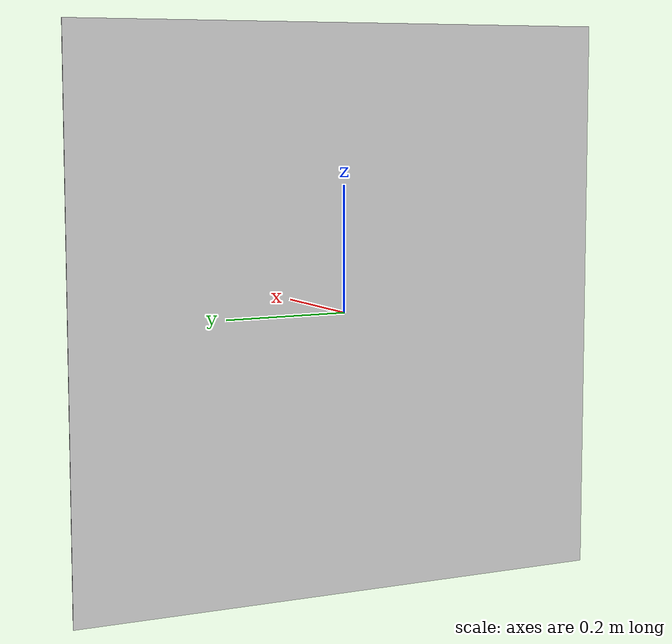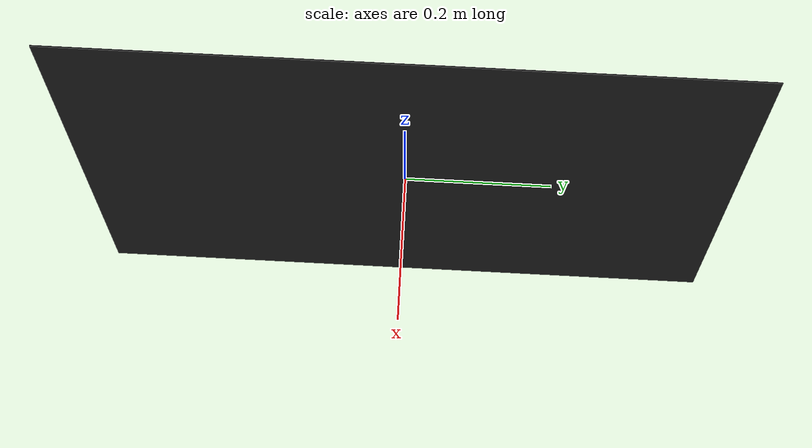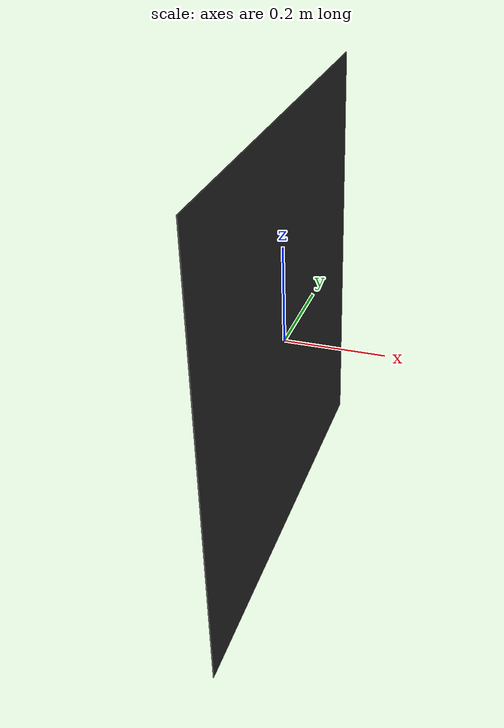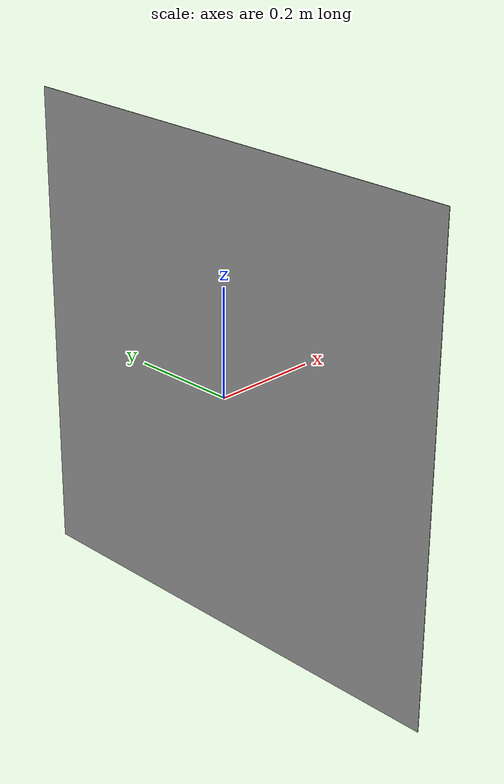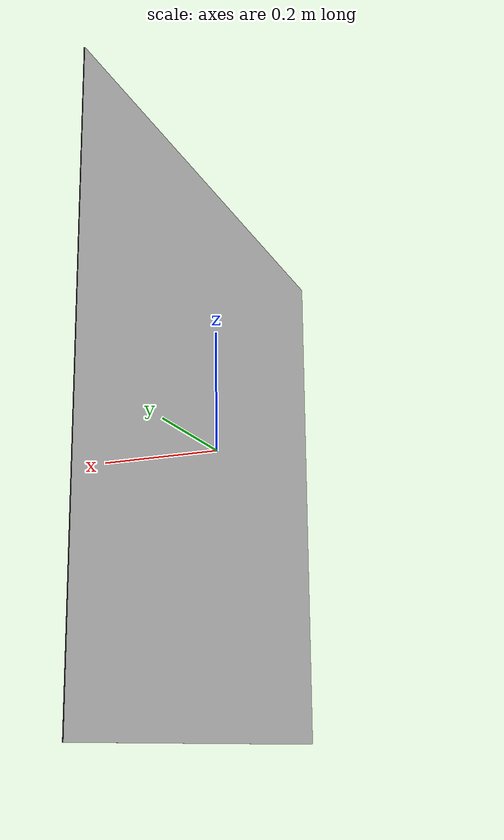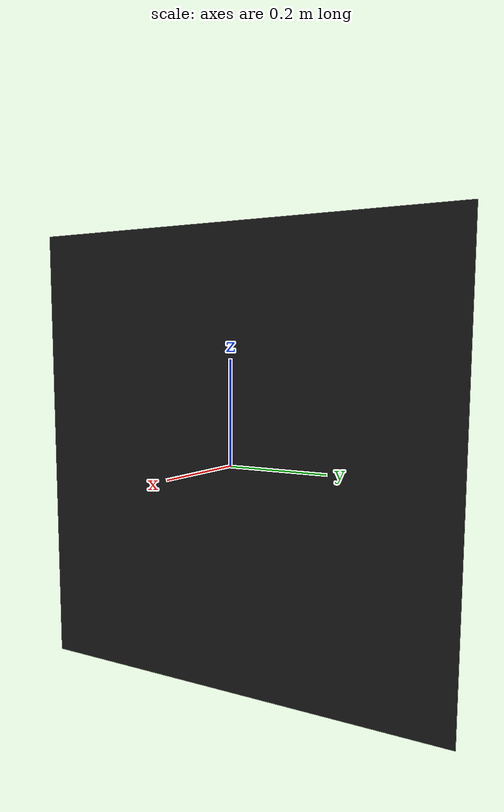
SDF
<?xml version="1.0" ?>
<sdf version="1.6">
  <model name="landmark_green">
    <static>true</static>
    <link name="link">
      <pose>0 0 0 0 0 0</pose>
      <collision name="collision">
        <geometry>
          <box>
            <size>1e-5 0.9 0.9</size>
          </box>
        </geometry>
      </collision>
      <visual name="visual">
         <geometry>
           <box>
            <size>1e-5 0.9 0.9</size>
          </box>
         </geometry>
        <material>
          <script>
            <uri>model://landmark_green/materials/scripts</uri>
	          <uri>model://landmark_green/materials/textures</uri>
            <name>cube2/qr</name>
          </script>
        </material>
       </visual>
    </link>
    <link name="linkblack">
      <pose>1e-3 0 0 0 0 0</pose>
      <collision name="collisionblack">
        <geometry>
          <box>
            <size>1e-3 0.9 0.9</size>
          </box>
        </geometry>
      </collision>
      <visual name="visualblack">
         <geometry>
           <box>
            <size>1e-3 0.9 0.9</size>
          </box>
         </geometry>
        <material>
          <script>
            <uri>file://media/materials/scripts/gazebo.material</uri>
            <name>Gazebo/Black</name>
          </script>
        </material>
       </visual>
    </link>
  </model>
</sdf>
